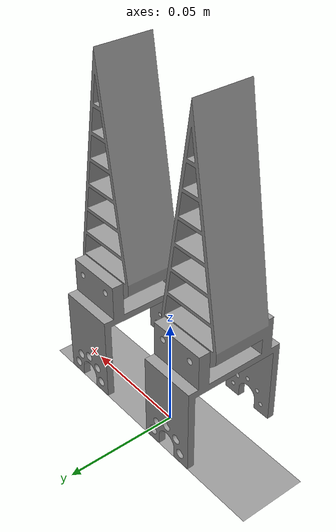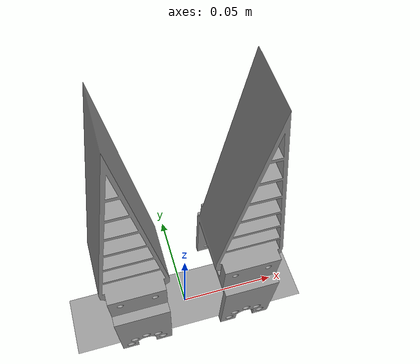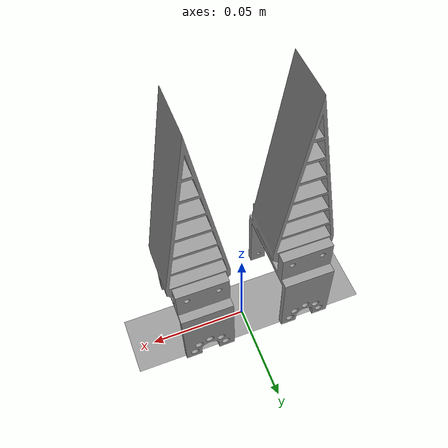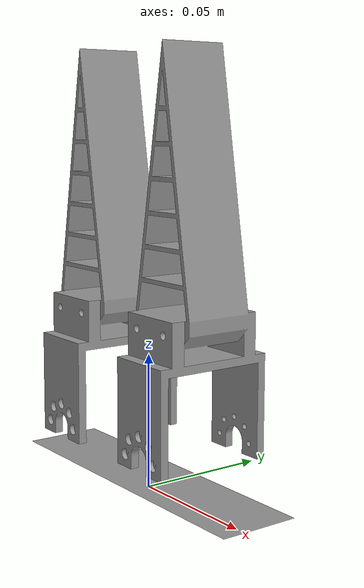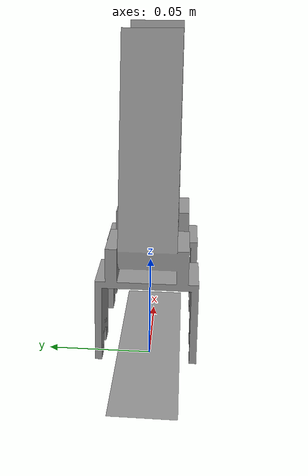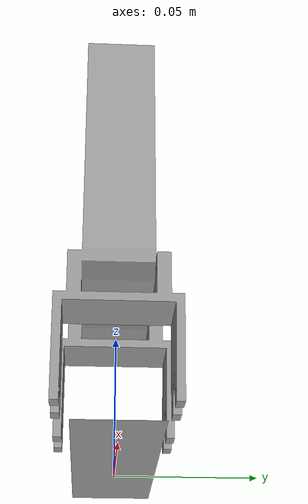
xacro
<?xml version="1.0"?>
<robot xmlns:xacro="http://www.ros.org/wiki/xacro">

    <link name="gripper_base_link">
    <visual>
        <geometry>
        <box size="0.123 0.03 0.00"/>
        </geometry>
        <origin xyz="0 0 0.00425"/>
        <material name="grey">
        <color rgba="0.6 0.6 0.6 1"/>
        </material>
    </visual>

    </link>

    <link name="finger_left">

    <visual>
        <geometry>
        <mesh filename="package://manip_description/meshes/left_finger.stl" scale="0.001 0.001 0.001"/>
        </geometry>
        <origin xyz="-0.0252 0 -0.58444" rpy="0 0 0"/>
        <material name="grey">
        <color rgba="0.6 0.6 0.6 1"/>
        </material>
    </visual>

    <collision>
        <geometry>
        <mesh filename="package://manip_description/meshes/left_finger.stl" scale="0.001 0.001 0.001"/>
        </geometry>
        <origin xyz="-0.0252 0 -0.58444" rpy="0 0 0"/>
    </collision>

    <inertial>
        <mass value="0.05"/>
        <origin xyz="-0.0252 0 -0.58444" rpy="0 0 0"/>
        <inertia ixx="3e-05" ixy="0" ixz="0" iyy="3e-05" iyz="0" izz="8e-06"/>
    </inertial>

    </link>

    <joint name="manip_joint6" type="revolute">
    <parent link="gripper_base_link"/>
    <child link="finger_left"/>
    <origin xyz="-0.0252 0 0.0215"/>
    <axis xyz="0 1 0"/>
    <limit lower="-1.0" upper="1.0" effort="1" velocity="5"/>
    </joint>

    <link name="finger_right">

    <visual>
        <geometry>
        <mesh filename="package://manip_description/meshes/right_finger.stl" scale="0.001 0.001 0.001"/>
        </geometry>
        <origin xyz="0.0252 0 -0.58444" rpy="0 0 0"/>
        <material name="grey"/>
    </visual>

    <collision>
        <geometry>
        <mesh filename="package://manip_description/meshes/right_finger.stl" scale="0.001 0.001 0.001"/>
        </geometry>
        <origin xyz="0.0252 0 -0.58444" rpy="0 0 0"/>
    </collision>

    <inertial>
        <mass value="0.05"/>
        <origin xyz="0.0252 0 -0.58444" rpy="0 0 0"/>
        <inertia ixx="3e-05" ixy="0" ixz="0" iyy="3e-05" iyz="0" izz="8e-06"/>
    </inertial>

    </link>

    <joint name="manip_joint7" type="revolute">
    <parent link="gripper_base_link"/>
    <child link="finger_right"/>
    <origin xyz="0.0252 0 0.0215"/>
    <axis xyz="0 -1 0"/>
    <limit lower="-1.0" upper="1.0" effort="1" velocity="5"/>
    </joint>

</robot>
